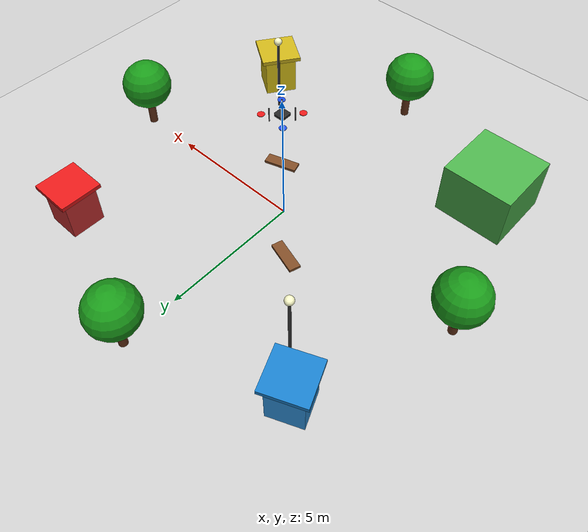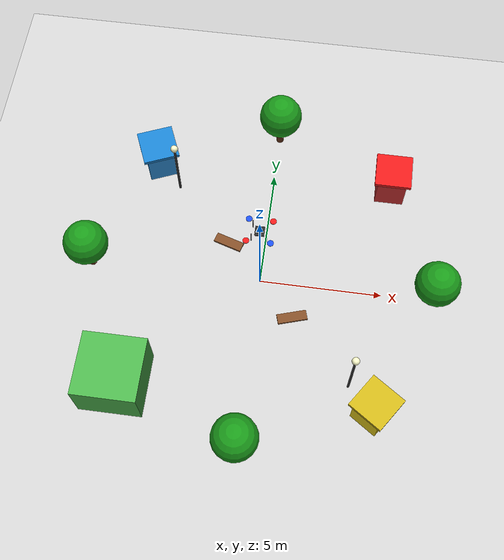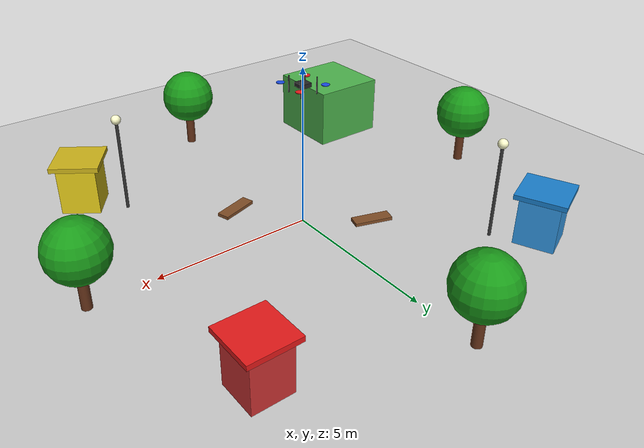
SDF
<sdf version="1.6">
 <world name="crowd_world">
  <plugin name="gazebo_ros_state" filename="libgazebo_ros_state.so">
   <ros><namespace>/gazebo</namespace></ros>
  </plugin>
  <include><uri>model://ground_plane</uri></include>
  <include><uri>model://sun</uri></include>
  <model name="drone">
   <pose>0 0 4.5 0 0 0</pose>
   <link name="link">
    <gravity>0</gravity>
    <inertial><mass>1.0</mass></inertial>
    <collision name="collision"><geometry><box><size>0.5 0.5 0.15</size></box></geometry></collision>
    <visual name="body">
     <geometry><box><size>0.35 0.35 0.12</size></box></geometry>
     <material><ambient>0.15 0.15 0.15 1</ambient><diffuse>0.15 0.15 0.15 1</diffuse></material>
    </visual>
    <visual name="arm_fr">
     <pose>0.28 0.28 0 0 0 0.785</pose>
     <geometry><cylinder><radius>0.02</radius><length>0.5</length></cylinder></geometry>
     <material><ambient>0.2 0.2 0.2 1</ambient></material>
    </visual>
    <visual name="arm_fl">
     <pose>0.28 -0.28 0 0 0 -0.785</pose>
     <geometry><cylinder><radius>0.02</radius><length>0.5</length></cylinder></geometry>
     <material><ambient>0.2 0.2 0.2 1</ambient></material>
    </visual>
    <visual name="arm_br">
     <pose>-0.28 0.28 0 0 0 -0.785</pose>
     <geometry><cylinder><radius>0.02</radius><length>0.5</length></cylinder></geometry>
     <material><ambient>0.2 0.2 0.2 1</ambient></material>
    </visual>
    <visual name="arm_bl">
     <pose>-0.28 -0.28 0 0 0 0.785</pose>
     <geometry><cylinder><radius>0.02</radius><length>0.5</length></cylinder></geometry>
     <material><ambient>0.2 0.2 0.2 1</ambient></material>
    </visual>
    <visual name="rotor_fr">
     <pose>0.45 0.45 0.03 0 0 0</pose>
     <geometry><cylinder><radius>0.12</radius><length>0.02</length></cylinder></geometry>
     <material><ambient>0.9 0.1 0.1 1</ambient></material>
    </visual>
    <visual name="rotor_fl">
     <pose>0.45 -0.45 0.03 0 0 0</pose>
     <geometry><cylinder><radius>0.12</radius><length>0.02</length></cylinder></geometry>
     <material><ambient>0.1 0.3 0.9 1</ambient></material>
    </visual>
    <visual name="rotor_br">
     <pose>-0.45 0.45 0.03 0 0 0</pose>
     <geometry><cylinder><radius>0.12</radius><length>0.02</length></cylinder></geometry>
     <material><ambient>0.1 0.3 0.9 1</ambient></material>
    </visual>
    <visual name="rotor_bl">
     <pose>-0.45 -0.45 0.03 0 0 0</pose>
     <geometry><cylinder><radius>0.12</radius><length>0.02</length></cylinder></geometry>
     <material><ambient>0.9 0.1 0.1 1</ambient></material>
    </visual>
    <sensor name="drone_camera" type="camera">
     <pose>0.1 0 0.1 0 0 0</pose>
     <camera>
      <horizontal_fov>1.2</horizontal_fov>
      <image><width>1280</width><height>960</height></image>
      <clip><near>0.1</near><far>100</far></clip>
     </camera>
     <always_on>1</always_on>
     <update_rate>30</update_rate>
     <plugin name="camera_controller" filename="libgazebo_ros_camera.so">
      <ros><namespace>drone_cam</namespace></ros>
     </plugin>
    </sensor>
    <sensor name="camera_front" type="camera">
     <pose>0.18 0 0 0 0 0</pose>
     <camera>
      <horizontal_fov>1.4</horizontal_fov>
      <image><width>320</width><height>240</height></image>
      <clip><near>0.1</near><far>100</far></clip>
     </camera>
     <always_on>true</always_on>
     <update_rate>10</update_rate>
     <visualize>false</visualize>
     <plugin name="cam_front_plugin" filename="libgazebo_ros_camera.so">
      <ros><namespace>/drone/camera_front</namespace></ros>
      <camera_name>front</camera_name>
      <frame_name>camera_front_link</frame_name>
     </plugin>
    </sensor>
    <sensor name="camera_back" type="camera">
     <pose>-0.18 0 0 0 0 3.14159</pose>
     <camera>
      <horizontal_fov>1.4</horizontal_fov>
      <image><width>320</width><height>240</height></image>
      <clip><near>0.1</near><far>100</far></clip>
     </camera>
     <always_on>true</always_on>
     <update_rate>10</update_rate>
     <visualize>false</visualize>
     <plugin name="cam_back_plugin" filename="libgazebo_ros_camera.so">
      <ros><namespace>/drone/camera_back</namespace></ros>
      <camera_name>back</camera_name>
      <frame_name>camera_back_link</frame_name>
     </plugin>
    </sensor>
    <sensor name="camera_left" type="camera">
     <pose>0 0.18 0 0 0 1.5708</pose>
     <camera>
      <horizontal_fov>1.4</horizontal_fov>
      <image><width>320</width><height>240</height></image>
      <clip><near>0.1</near><far>100</far></clip>
     </camera>
     <always_on>true</always_on>
     <update_rate>10</update_rate>
     <visualize>false</visualize>
     <plugin name="cam_left_plugin" filename="libgazebo_ros_camera.so">
      <ros><namespace>/drone/camera_left</namespace></ros>
      <camera_name>left</camera_name>
      <frame_name>camera_left_link</frame_name>
     </plugin>
    </sensor>
    <sensor name="camera_right" type="camera">
     <pose>0 -0.18 0 0 0 -1.5708</pose>
     <camera>
      <horizontal_fov>1.4</horizontal_fov>
      <image><width>320</width><height>240</height></image>
      <clip><near>0.1</near><far>100</far></clip>
     </camera>
     <always_on>true</always_on>
     <update_rate>10</update_rate>
     <visualize>false</visualize>
     <plugin name="cam_right_plugin" filename="libgazebo_ros_camera.so">
      <ros><namespace>/drone/camera_right</namespace></ros>
      <camera_name>right</camera_name>
      <frame_name>camera_right_link</frame_name>
     </plugin>
    </sensor>
   </link>
   <plugin name="planar_move" filename="libgazebo_ros_planar_move.so">
    <ros><namespace>/drone</namespace></ros>
    <command_topic>cmd_vel</command_topic>
    <odometry_topic>odom</odometry_topic>
    <odometry_frame>odom</odometry_frame>
    <robot_base_frame>link</robot_base_frame>
   </plugin>
  </model>
  <model name="stall_1">
   <static>true</static>
   <pose>5 5 0.75 0 0 0</pose>
   <link name="link">
    <visual name="base">
     <geometry><box><size>1.2 1.2 1.5</size></box></geometry>
     <material><ambient>0.8 0.2 0.2 1</ambient></material>
    </visual>
    <visual name="roof">
     <pose>0 0 0.85 0 0 0</pose>
     <geometry><box><size>1.5 1.5 0.15</size></box></geometry>
     <material><ambient>0.9 0.1 0.1 1</ambient></material>
    </visual>
    <collision name="collision"><geometry><box><size>1.2 1.2 1.5</size></box></geometry></collision>
   </link>
  </model>
  <model name="stall_2">
   <static>true</static>
   <pose>-5 5 0.75 0 0 0.4</pose>
   <link name="link">
    <visual name="base">
     <geometry><box><size>1.2 1.2 1.5</size></box></geometry>
     <material><ambient>0.2 0.6 0.9 1</ambient></material>
    </visual>
    <visual name="roof">
     <pose>0 0 0.85 0 0 0</pose>
     <geometry><box><size>1.5 1.5 0.15</size></box></geometry>
     <material><ambient>0.1 0.5 0.8 1</ambient></material>
    </visual>
    <collision name="collision"><geometry><box><size>1.2 1.2 1.5</size></box></geometry></collision>
   </link>
  </model>
  <model name="stall_3">
   <static>true</static>
   <pose>5 -5 0.75 0 0 -0.6</pose>
   <link name="link">
    <visual name="base">
     <geometry><box><size>1.2 1.2 1.5</size></box></geometry>
     <material><ambient>0.9 0.8 0.1 1</ambient></material>
    </visual>
    <visual name="roof">
     <pose>0 0 0.85 0 0 0</pose>
     <geometry><box><size>1.5 1.5 0.15</size></box></geometry>
     <material><ambient>0.8 0.7 0.1 1</ambient></material>
    </visual>
    <collision name="collision"><geometry><box><size>1.2 1.2 1.5</size></box></geometry></collision>
   </link>
  </model>
  <model name="tent_1">
   <static>true</static>
   <pose>-5 -5 1.0 0 0 0</pose>
   <link name="link">
    <visual name="tent">
     <geometry><box><size>2.5 2.5 2.0</size></box></geometry>
     <material><ambient>0.3 0.7 0.3 1</ambient></material>
    </visual>
    <collision name="collision"><geometry><box><size>2.5 2.5 2.0</size></box></geometry></collision>
   </link>
  </model>
  <model name="tree_1">
   <static>true</static>
   <pose>7 0 0 0 0 0</pose>
   <link name="link">
    <visual name="trunk">
     <pose>0 0 0.75 0 0 0</pose>
     <geometry><cylinder><radius>0.15</radius><length>1.5</length></cylinder></geometry>
     <material><ambient>0.4 0.2 0.1 1</ambient></material>
    </visual>
    <visual name="canopy">
     <pose>0 0 1.8 0 0 0</pose>
     <geometry><sphere><radius>0.9</radius></sphere></geometry>
     <material><ambient>0.1 0.6 0.1 1</ambient></material>
    </visual>
    <collision name="collision">
     <pose>0 0 0.75 0 0 0</pose>
     <geometry><cylinder><radius>0.15</radius><length>1.5</length></cylinder></geometry>
    </collision>
   </link>
  </model>
  <model name="tree_2">
   <static>true</static>
   <pose>-7 0 0 0 0 0</pose>
   <link name="link">
    <visual name="trunk">
     <pose>0 0 0.75 0 0 0</pose>
     <geometry><cylinder><radius>0.15</radius><length>1.5</length></cylinder></geometry>
     <material><ambient>0.4 0.2 0.1 1</ambient></material>
    </visual>
    <visual name="canopy">
     <pose>0 0 1.8 0 0 0</pose>
     <geometry><sphere><radius>0.9</radius></sphere></geometry>
     <material><ambient>0.1 0.6 0.1 1</ambient></material>
    </visual>
    <collision name="collision">
     <pose>0 0 0.75 0 0 0</pose>
     <geometry><cylinder><radius>0.15</radius><length>1.5</length></cylinder></geometry>
    </collision>
   </link>
  </model>
  <model name="tree_3">
   <static>true</static>
   <pose>0 7 0 0 0 0</pose>
   <link name="link">
    <visual name="trunk">
     <pose>0 0 0.75 0 0 0</pose>
     <geometry><cylinder><radius>0.15</radius><length>1.5</length></cylinder></geometry>
     <material><ambient>0.4 0.2 0.1 1</ambient></material>
    </visual>
    <visual name="canopy">
     <pose>0 0 1.8 0 0 0</pose>
     <geometry><sphere><radius>0.9</radius></sphere></geometry>
     <material><ambient>0.1 0.6 0.1 1</ambient></material>
    </visual>
    <collision name="collision">
     <pose>0 0 0.75 0 0 0</pose>
     <geometry><cylinder><radius>0.15</radius><length>1.5</length></cylinder></geometry>
    </collision>
   </link>
  </model>
  <model name="tree_4">
   <static>true</static>
   <pose>0 -7 0 0 0 0</pose>
   <link name="link">
    <visual name="trunk">
     <pose>0 0 0.75 0 0 0</pose>
     <geometry><cylinder><radius>0.15</radius><length>1.5</length></cylinder></geometry>
     <material><ambient>0.4 0.2 0.1 1</ambient></material>
    </visual>
    <visual name="canopy">
     <pose>0 0 1.8 0 0 0</pose>
     <geometry><sphere><radius>0.9</radius></sphere></geometry>
     <material><ambient>0.1 0.6 0.1 1</ambient></material>
    </visual>
    <collision name="collision">
     <pose>0 0 0.75 0 0 0</pose>
     <geometry><cylinder><radius>0.15</radius><length>1.5</length></cylinder></geometry>
    </collision>
   </link>
  </model>
  <model name="bench_1">
   <static>true</static>
   <pose>1.5 -1.5 0.25 0 0 0.3</pose>
   <link name="link">
    <visual name="seat">
     <geometry><box><size>1.2 0.4 0.1</size></box></geometry>
     <material><ambient>0.5 0.3 0.15 1</ambient></material>
    </visual>
    <collision name="collision"><geometry><box><size>1.2 0.4 0.1</size></box></geometry></collision>
   </link>
  </model>
  <model name="bench_2">
   <static>true</static>
   <pose>-1.5 1.5 0.25 0 0 -0.3</pose>
   <link name="link">
    <visual name="seat">
     <geometry><box><size>1.2 0.4 0.1</size></box></geometry>
     <material><ambient>0.5 0.3 0.15 1</ambient></material>
    </visual>
    <collision name="collision"><geometry><box><size>1.2 0.4 0.1</size></box></geometry></collision>
   </link>
  </model>
  <model name="lamp_1">
   <static>true</static>
   <pose>4 -4 0 0 0 0</pose>
   <link name="link">
    <visual name="pole">
     <pose>0 0 1.5 0 0 0</pose>
     <geometry><cylinder><radius>0.05</radius><length>3.0</length></cylinder></geometry>
     <material><ambient>0.2 0.2 0.2 1</ambient></material>
    </visual>
    <visual name="light">
     <pose>0 0 3.05 0 0 0</pose>
     <geometry><sphere><radius>0.15</radius></sphere></geometry>
     <material><ambient>1 1 0.8 1</ambient></material>
    </visual>
    <collision name="collision">
     <pose>0 0 1.5 0 0 0</pose>
     <geometry><cylinder><radius>0.05</radius><length>3.0</length></cylinder></geometry>
    </collision>
   </link>
  </model>
  <model name="lamp_2">
   <static>true</static>
   <pose>-4 4 0 0 0 0</pose>
   <link name="link">
    <visual name="pole">
     <pose>0 0 1.5 0 0 0</pose>
     <geometry><cylinder><radius>0.05</radius><length>3.0</length></cylinder></geometry>
     <material><ambient>0.2 0.2 0.2 1</ambient></material>
    </visual>
    <visual name="light">
     <pose>0 0 3.05 0 0 0</pose>
     <geometry><sphere><radius>0.15</radius></sphere></geometry>
     <material><ambient>1 1 0.8 1</ambient></material>
    </visual>
    <collision name="collision">
     <pose>0 0 1.5 0 0 0</pose>
     <geometry><cylinder><radius>0.05</radius><length>3.0</length></cylinder></geometry>
    </collision>
   </link>
  </model>
 </world>
</sdf>
